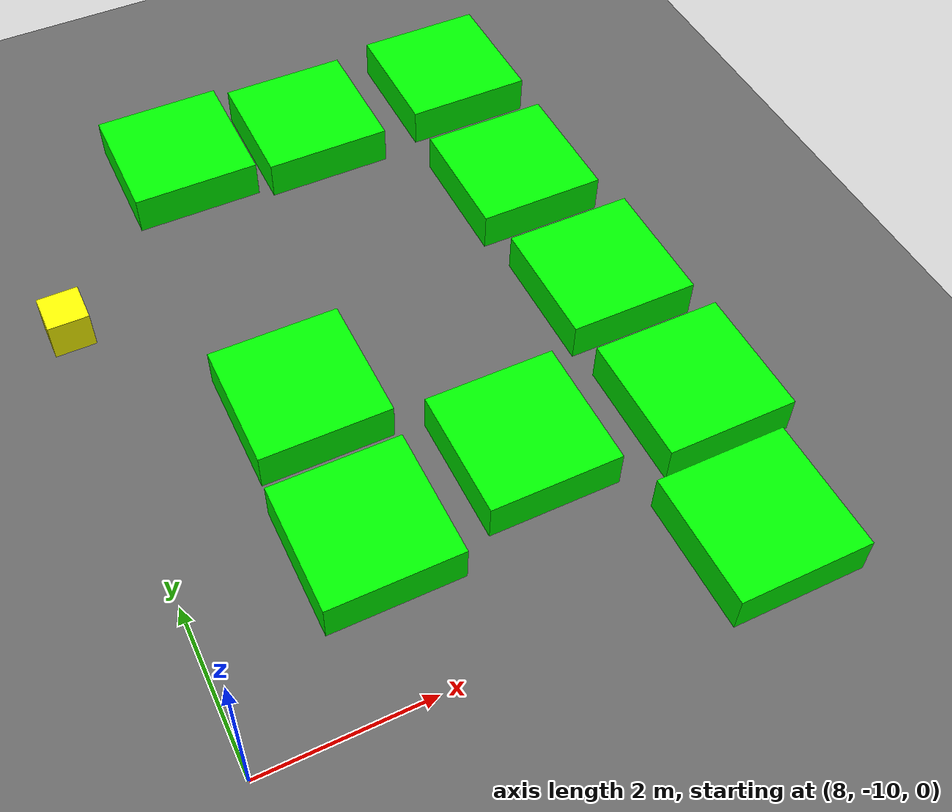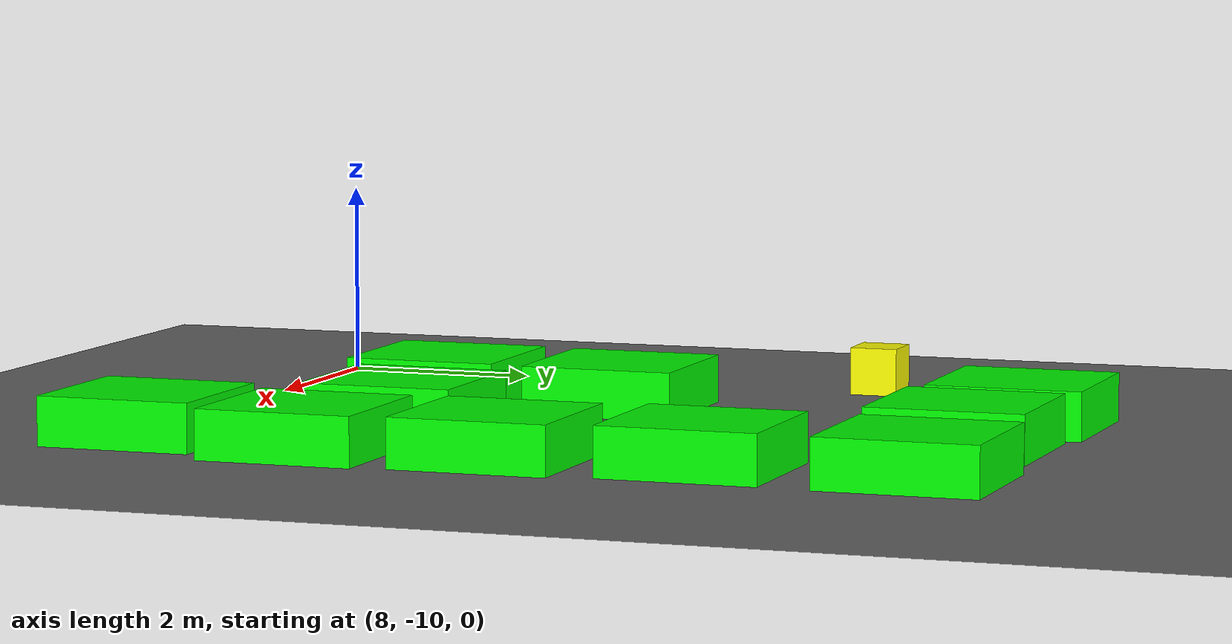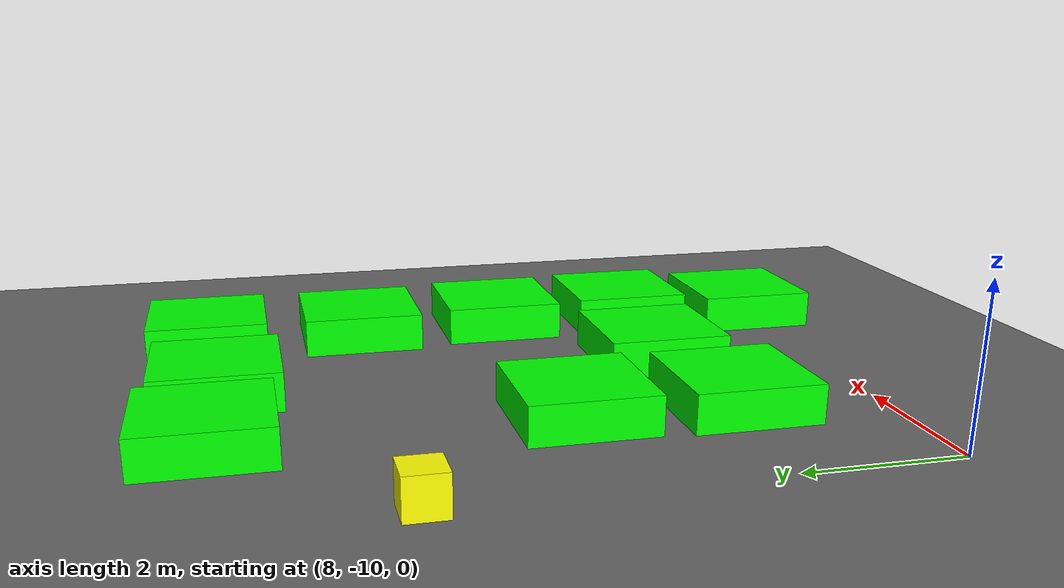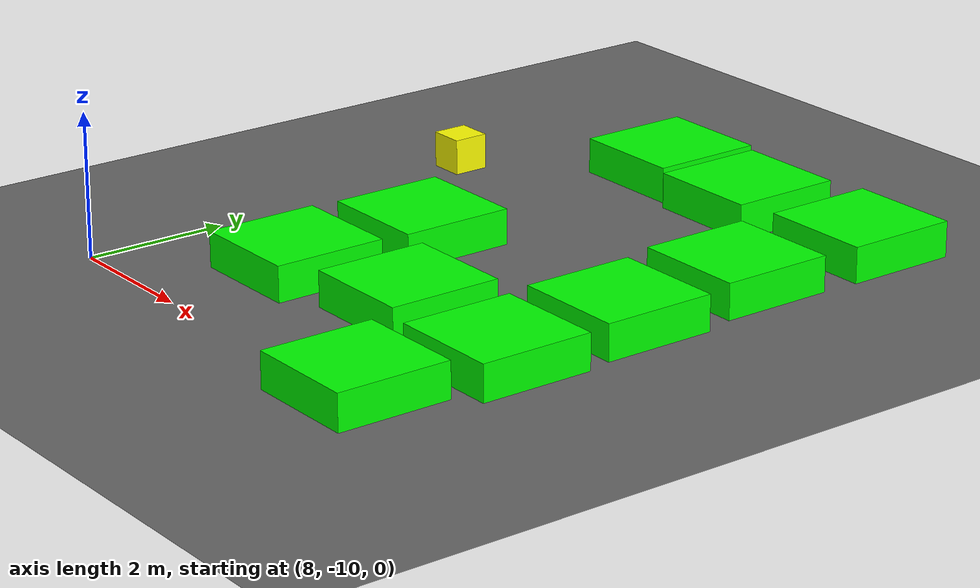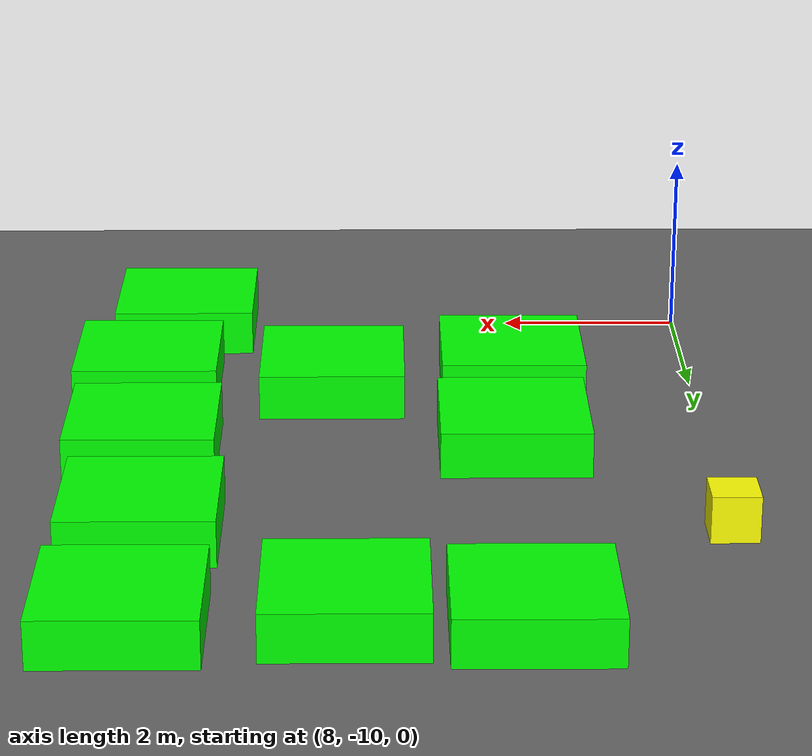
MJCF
<mujoco model="lvl5_deadend_obs15_d10_depth3_seed0">
    <compiler angle="degree" coordinate="local" inertiafromgeom="true"/>
    <option integrator="RK4" timestep="0.01"/>

    <asset>
        <texture builtin="gradient" height="100" rgb1="0.6 0.8 1" rgb2="0 0 0" type="skybox" width="100"/>
        <texture name="floor_texture" type="2d" builtin="checker" width="100" height="100" rgb1="0 0 0" rgb2="0.8 0.8 0.8"/>
        <material name="MatPlane" reflectance="0.5" shininess="1" specular="1" texrepeat="10 10" texture="floor_texture"/>
    </asset>

    <!-- Excluding the contact between the agent and the goal, and the agent and the floor -->
    <contact>
        <exclude body1="agent" body2="goal"/>
        <exclude body1 = "agent" body2 = "floor"/>
    </contact>

    <extension>
        <plugin plugin = "mujoco.pid">
            <instance name = "pid1">
                <config key="kp" value="2"/>
                <config key="ki" value="0"/>
                <config key="kd" value="55"/>
            </instance>
        </plugin>
    </extension>

    <worldbody>
        <light cutoff="100" diffuse="1 1 1" dir="-0 0 -1.3" directional="true" exponent="1" pos="0 0 1.3" specular=".1 .1 .1"/>
        <body name="floor" pos="0 0 0">
            <geom name="floor_geom" type="plane" size="20 20 0.1" material="MatPlane"/>
        </body>

                <body name="goal" pos="12.0000 -12.0000 0">
            <geom name="goal_geom" type="plane" size="0.5 0.5 1" pos="0 0 0" rgba="1 0 0 1"/>
        </body>

                <body name="agent" pos="8.0000 -4.0000 0.250">
            <joint name="j1" type="slide" axis ="1 0 0 "/>
            <joint name="j2" type="slide" axis ="0 1 0 "/>
            <geom name="agent_geom" type="box" size="0.25 0.25 0.250" rgba="1 1 0 1"/>
        </body>

        <body name="obstacle1" pos="10.1001 -1.9089 0.250">  <geom name="obstacle1_geom" type="box" size="0.8000 0.8000 0.250" rgba="0 1 0 1"/></body>
        <body name="obstacle2" pos="11.8568 -2.0347 0.250">  <geom name="obstacle2_geom" type="box" size="0.8000 0.8000 0.250" rgba="0 1 0 1"/></body>
        <body name="obstacle3" pos="13.9532 -1.9140 0.250">  <geom name="obstacle3_geom" type="box" size="0.8000 0.8000 0.250" rgba="0 1 0 1"/></body>
        <body name="obstacle4" pos="13.9220 -4.0300 0.250">  <geom name="obstacle4_geom" type="box" size="0.8000 0.8000 0.250" rgba="0 1 0 1"/></body>
        <body name="obstacle5" pos="10.0921 -6.1783 0.250">  <geom name="obstacle5_geom" type="box" size="0.8000 0.8000 0.250" rgba="0 1 0 1"/></body>
        <body name="obstacle6" pos="14.0502 -6.0544 0.250">  <geom name="obstacle6_geom" type="box" size="0.8000 0.8000 0.250" rgba="0 1 0 1"/></body>
        <body name="obstacle7" pos="10.0283 -8.1351 0.250">  <geom name="obstacle7_geom" type="box" size="0.8000 0.8000 0.250" rgba="0 1 0 1"/></body>
        <body name="obstacle8" pos="12.0508 -7.8096 0.250">  <geom name="obstacle8_geom" type="box" size="0.8000 0.8000 0.250" rgba="0 1 0 1"/></body>
        <body name="obstacle9" pos="14.1306 -7.9957 0.250">  <geom name="obstacle9_geom" type="box" size="0.8000 0.8000 0.250" rgba="0 1 0 1"/></body>
        <body name="obstacle10" pos="13.8063 -9.8239 0.250">  <geom name="obstacle10_geom" type="box" size="0.8000 0.8000 0.250" rgba="0 1 0 1"/></body>

    </worldbody>

    <sensor>
<!-- SENSORS -->

        <distance name="dist1" geom1="agent_geom" geom2="obstacle1_geom" cutoff="1.5"/>
        <distance name="dist2" geom1="agent_geom" geom2="obstacle2_geom" cutoff="1.5"/>
        <distance name="dist3" geom1="agent_geom" geom2="obstacle3_geom" cutoff="1.5"/>
        <distance name="dist4" geom1="agent_geom" geom2="obstacle4_geom" cutoff="1.5"/>
        <distance name="dist5" geom1="agent_geom" geom2="obstacle5_geom" cutoff="1.5"/>
        <distance name="dist6" geom1="agent_geom" geom2="obstacle6_geom" cutoff="1.5"/>
        <distance name="dist7" geom1="agent_geom" geom2="obstacle7_geom" cutoff="1.5"/>
        <distance name="dist8" geom1="agent_geom" geom2="obstacle8_geom" cutoff="1.5"/>
        <distance name="dist9" geom1="agent_geom" geom2="obstacle9_geom" cutoff="1.5"/>
        <distance name="dist10" geom1="agent_geom" geom2="obstacle10_geom" cutoff="1.5"/>
</sensor>

    <actuator>
        <plugin joint="j1" plugin="mujoco.pid" instance="pid1" />
        <plugin joint="j2" plugin="mujoco.pid" instance="pid1"/>
    </actuator>
</mujoco>
